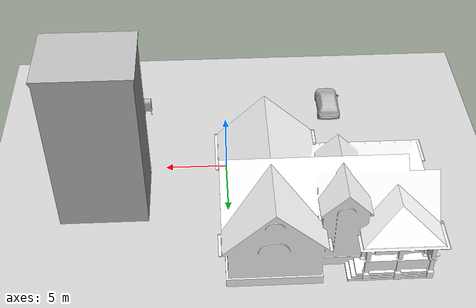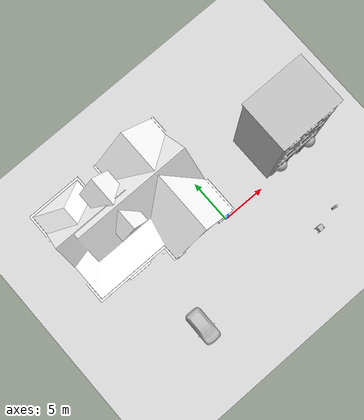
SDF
<sdf version="1.6">
 <world name="default">
  <light name="sun" type="directional">
   <pose>0 0 10 0 -0 0</pose>
   <diffuse>0.8 0.8 0.8 1</diffuse>
   <specular>0.2 0.2 0.2 1</specular>
   <attenuation>
    <range>1000</range>
    <constant>0.9</constant>
    <linear>0.01</linear>
    <quadratic>0.001</quadratic>
   </attenuation>
   <direction>-0.5 0.1 -0.9</direction>
  </light>
  <model name="ground_plane">
   <static>1</static>
   <link name="map">
    <collision name="collision">
     <geometry><plane><normal>0 0 1</normal><size>100 100</size></plane></geometry>
     <surface>
      <contact><collide_bitmask>65535</collide_bitmask></contact>
      <friction><ode><mu>100</mu><mu2>50</mu2></ode></friction>
     </surface>
    </collision>
    <visual name="visual">
     <cast_shadows>0</cast_shadows>
     <geometry><plane><normal>0 0 1</normal><size>100 100</size></plane></geometry>
     <material>
      <script><uri>file://media/materials/scripts/gazebo.material</uri><name>Gazebo/Grey</name></script>
     </material>
    </visual>
   </link>
  </model>
  <gravity>0 0 -9.8</gravity>
  <magnetic_field>6e-06 2.3e-05 -4.2e-05</magnetic_field>
  <atmosphere type="adiabatic"/>
  <physics name="default_physics" default="0" type="ode">
   <max_step_size>0.001</max_step_size>
   <real_time_factor>1</real_time_factor>
   <real_time_update_rate>1000</real_time_update_rate>
  </physics>
  <scene><ambient>0.4 0.4 0.4 1</ambient><background>0.7 0.7 0.7 1</background><shadows>1</shadows></scene>
  <spherical_coordinates>
   <surface_model>EARTH_WGS84</surface_model>
   <latitude_deg>0</latitude_deg>
   <longitude_deg>0</longitude_deg>
   <elevation>0</elevation>
   <heading_deg>0</heading_deg>
  </spherical_coordinates>
  <model name="hatchback_blue">
   <static>1</static>
   <link name="link">
    <collision name="collision">
     <pose>0 0 0 0 -0 1.5708</pose>
     <geometry>
      <mesh><scale>0.0254 0.0254 0.0254</scale><uri>model://hatchback_blue/meshes/hatchback.obj</uri></mesh>
     </geometry>
    </collision>
    <visual name="visual">
     <pose>0 0 0 0 -0 1.5708</pose>
     <geometry>
      <mesh><scale>0.0254 0.0254 0.0254</scale><uri>model://hatchback_blue/meshes/hatchback.obj</uri></mesh>
     </geometry>
    </visual>
   </link>
   <pose>-9.15783 -6.43722 0.175542 0 0 -1.5856</pose>
  </model>
  <model name="House 1">
   <static>1</static>
   <link name="link">
    <collision name="collision">
     <geometry><mesh><uri>model://house_1/meshes/house_1.dae</uri><scale>1.5 1.5 1.5</scale></mesh></geometry>
    </collision>
    <visual name="visual">
     <geometry><mesh><uri>model://house_1/meshes/house_1.dae</uri><scale>1.5 1.5 1.5</scale></mesh></geometry>
     <material>
      <script>
       <uri>model://house_1/materials/scripts</uri>
       <uri>model://house_1/materials/textures</uri>
       <name>House_1/Diffuse</name>
      </script>
      <shader type="normal_map_tangent_space"><normal_map>House_1_Normal.png</normal_map></shader>
     </material>
    </visual>
   </link>
   <pose>-6.92927 6.86736 0 0 -0 0</pose>
  </model>
  <model name="law_office">
   <static>1</static>
   <link name="link">
    <collision name="collision">
     <pose>0 0 6.96244 0 -0 0</pose>
     <geometry><box><size>6.84401 5.43165 13.9249</size></box></geometry>
    </collision>
    <visual name="visual">
     <geometry><mesh><uri>model://law_office/meshes/law_office.dae</uri></mesh></geometry>
    </visual>
   </link>
   <pose>9.63344 3.17366 0 0 -0 0</pose>
  </model>
  <model name="postbox">
   <static>1</static>
   <link name="link">
    <collision name="collision">
     <geometry><mesh><uri>model://postbox/meshes/postbox.dae</uri></mesh></geometry>
    </collision>
    <visual name="visual"><geometry><mesh><uri>model://postbox/meshes/postbox.dae</uri></mesh></geometry></visual>
   </link>
   <pose>6.69646 -7.15481 0 0 -0 0</pose>
  </model>
  <model name="person_standing">
   <link name="link">
    <inertial>
     <pose>0 -0.1 0.95 0 -0 0</pose>
     <mass>80</mass>
     <inertia><ixx>24.88</ixx><ixy>0</ixy><ixz>0</ixz><iyy>25.73</iyy><iyz>0</iyz><izz>2.48</izz></inertia>
    </inertial>
    <collision name="bottom">
     <pose>0 -0.1 0.01 0 -0 0</pose>
     <geometry><box><size>0.5 0.35 0.02</size></box></geometry>
    </collision>
    <collision name="person">
     <pose>0 0 0.02 0.04 -0 0</pose>
     <geometry><mesh><uri>model://person_standing/meshes/standing.dae</uri></mesh></geometry>
    </collision>
    <visual name="visual">
     <pose>0 0 0.02 0.04 -0 0</pose>
     <geometry><mesh><uri>model://person_standing/meshes/standing.dae</uri></mesh></geometry>
    </visual>
   </link>
   <pose>9.32311 -6.44656 0 0 1e-06 -0.001866</pose>
  </model>
 </world>
</sdf>
